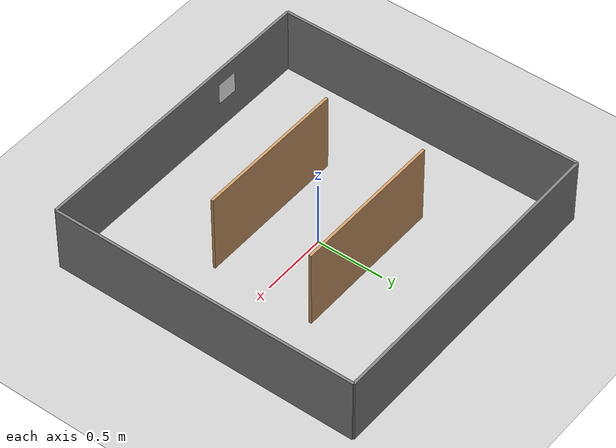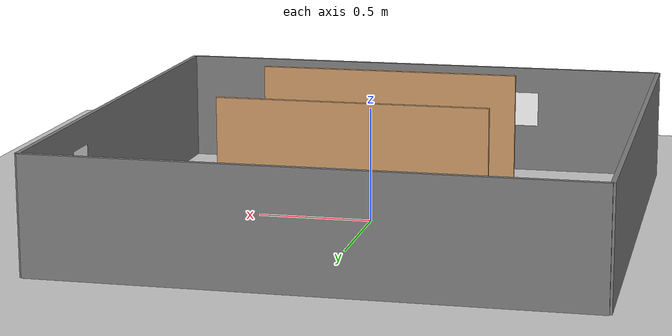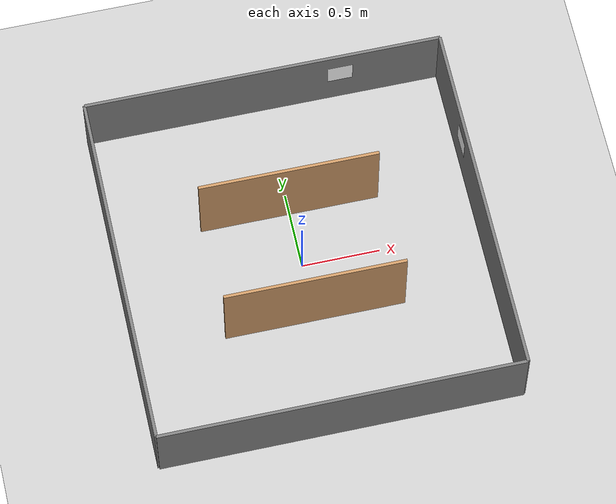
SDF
<?xml version="1.0"?>
<sdf version="1.6">
  <world name="warehouse_shelves">
    <!-- Physics Engine -->
    <plugin
      filename="gz-sim-physics-system"
      name="gz::sim::systems::Physics">
    </plugin>
    <plugin
      filename="gz-sim-user-commands-system"
      name="gz::sim::systems::UserCommands">
    </plugin>
    <plugin
      filename="gz-sim-scene-broadcaster-system"
      name="gz::sim::systems::SceneBroadcaster">
    </plugin>
    <plugin
      filename="gz-sim-sensors-system"
      name="gz::sim::systems::Sensors">
      <render_engine>ogre2</render_engine>
    </plugin>
    <plugin
      filename="gz-sim-imu-system"
      name="gz::sim::systems::Imu">
    </plugin>

    <!-- Ground Plane -->
    <include>
      <uri>https://fuel.gazebosim.org/1.0/OpenRobotics/models/Ground Plane</uri>
    </include>

    <!-- Sun (Lighting) -->
    <include>
      <uri>https://fuel.gazebosim.org/1.0/OpenRobotics/models/Sun</uri>
    </include>

    <!-- Scene Settings -->
    <scene>
      <shadows>true</shadows>
      <ambient>0.8 0.8 0.8 1</ambient>
      <background>0.7 0.7 0.7 1</background>
    </scene>

    <!-- GUI Camera View -->
    <gui fullscreen='0'>
      <camera name='user_camera'>
        <pose frame=''>0.0 -3.0 3.5 0 0.6 1.57</pose>
        <view_controller>orbit</view_controller>
        <projection_type>perspective</projection_type>
      </camera>
    </gui>

    <!-- Physics Configuration -->
    <physics type="ode">
      <real_time_update_rate>1000.0</real_time_update_rate>
      <max_step_size>0.001</max_step_size>
      <real_time_factor>1</real_time_factor>
      <ode>
        <solver>
          <type>quick</type>
          <iters>150</iters>
          <precon_iters>0</precon_iters>
          <sor>1.400000</sor>
          <use_dynamic_moi_rescaling>1</use_dynamic_moi_rescaling>
        </solver>
        <constraints>
          <cfm>0.00001</cfm>
          <erp>0.2</erp>
          <contact_max_correcting_vel>2000.000000</contact_max_correcting_vel>
          <contact_surface_layer>0.01000</contact_surface_layer>
        </constraints>
      </ode>
    </physics>

    <!-- WAREHOUSE BOUNDARY WALLS -->
    <!-- Outer perimeter: 2.3m x 2.3m centered at origin -->
    <!-- Wall thickness: 0.02m (2cm) for thin walls -->

    <!-- North Wall (top) -->
    <model name="wall_north">
      <static>true</static>
      <pose>0 1.15 0.25 0 0 0</pose>
      <link name="link">
        <collision name="collision">
          <geometry>
            <box>
              <size>2.3 0.02 0.5</size>
            </box>
          </geometry>
        </collision>
        <visual name="visual">
          <geometry>
            <box>
              <size>2.3 0.02 0.5</size>
            </box>
          </geometry>
          <material>
            <ambient>0.5 0.5 0.5 1</ambient>
            <diffuse>0.5 0.5 0.5 1</diffuse>
          </material>
        </visual>
      </link>
    </model>

    <!-- South Wall (bottom) -->
    <model name="wall_south">
      <static>true</static>
      <pose>0 -1.15 0.25 0 0 0</pose>
      <link name="link">
        <collision name="collision">
          <geometry>
            <box>
              <size>2.3 0.02 0.5</size>
            </box>
          </geometry>
        </collision>
        <visual name="visual">
          <geometry>
            <box>
              <size>2.3 0.02 0.5</size>
            </box>
          </geometry>
          <material>
            <ambient>0.5 0.5 0.5 1</ambient>
            <diffuse>0.5 0.5 0.5 1</diffuse>
          </material>
        </visual>
      </link>
    </model>

    <!-- East Wall (right) -->
    <model name="wall_east">
      <static>true</static>
      <pose>1.15 0 0.25 0 0 0</pose>
      <link name="link">
        <collision name="collision">
          <geometry>
            <box>
              <size>0.02 2.3 0.5</size>
            </box>
          </geometry>
        </collision>
        <visual name="visual">
          <geometry>
            <box>
              <size>0.02 2.3 0.5</size>
            </box>
          </geometry>
          <material>
            <ambient>0.5 0.5 0.5 1</ambient>
            <diffuse>0.5 0.5 0.5 1</diffuse>
          </material>
        </visual>
      </link>
    </model>

    <!-- West Wall (left) -->
    <model name="wall_west">
      <static>true</static>
      <pose>-1.15 0 0.25 0 0 0</pose>
      <link name="link">
        <collision name="collision">
          <geometry>
            <box>
              <size>0.02 2.3 0.5</size>
            </box>
          </geometry>
        </collision>
        <visual name="visual">
          <geometry>
            <box>
              <size>0.02 2.3 0.5</size>
            </box>
          </geometry>
          <material>
            <ambient>0.5 0.5 0.5 1</ambient>
            <diffuse>0.5 0.5 0.5 1</diffuse>
          </material>
        </visual>
      </link>
    </model>

    <!-- WAREHOUSE SHELVING UNITS -->
    <!-- 3 horizontal shelves, 1.15m wide, centered, with MORE spacing for navigation -->
    <!-- Shelf thickness: 0.02m (2cm) - same as walls -->
    <!-- Spacing increased to ~0.7m between shelves for easier navigation -->

    <!-- Shelf 1 (Top shelf) - Y position: 0.7m -->
    <model name="shelf_1">
      <static>true</static>
      <pose>0 0.38 0.3 0 0 0</pose>
      <link name="link">
        <collision name="collision">
          <geometry>
            <box>
              <size>1.15 0.02 0.6</size>
            </box>
          </geometry>
        </collision>
        <visual name="visual">
          <geometry>
            <box>
              <size>1.15 0.02 0.6</size>
            </box>
          </geometry>
          <material>
            <ambient>0.8 0.6 0.4 1</ambient>
            <diffuse>0.8 0.6 0.4 1</diffuse>
          </material>
        </visual>
      </link>
    </model>

    <!-- Shelf 3 (Bottom shelf) - Y position: -0.7m -->
    <model name="shelf_3">
      <static>true</static>
      <pose>0 -0.38 0.3 0 0 0</pose>
      <link name="link">
        <collision name="collision">
          <geometry>
            <box>
              <size>1.15 0.02 0.6</size>
            </box>
          </geometry>
        </collision>
        <visual name="visual">
          <geometry>
            <box>
              <size>1.15 0.02 0.6</size>
            </box>
          </geometry>
          <material>
            <ambient>0.8 0.6 0.4 1</ambient>
            <diffuse>0.8 0.6 0.4 1</diffuse>
          </material>
        </visual>
      </link>
    </model>

    <!-- APRILTAG MARKERS FOR DAMAGE DETECTION -->
    <!-- AprilTag ID 0 on North Wall (facing south, flat against wall) -->
    <include>
      <uri>model://apriltag_36h11_id0</uri>
      <name>apriltag_0_north</name>
      <pose>0.5 1.14 0.3 1.5708 0 3.14159</pose>
    </include>

    <!-- AprilTag ID 0 on East Wall (facing west, flat against wall) -->
    <include>
      <uri>model://apriltag_36h11_id0</uri>
      <name>apriltag_0_east</name>
      <pose>1.14 0.5 0.3 1.5708 0 -1.5708</pose>
    </include>

    <!-- AprilTag ID 0 on South Wall (facing north, flat against wall) -->
    <include>
      <uri>model://apriltag_36h11_id0</uri>
      <name>apriltag_0_south</name>
      <pose>-0.5 -1.14 0.3 1.5708 0 0</pose>
    </include>

  </world>
</sdf>

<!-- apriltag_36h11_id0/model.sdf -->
<sdf version="1.6">
  <model name="apriltag_36h11_id0">
    <static>true</static>
    <link name="link">
      <pose>0 0 0 0 0 0</pose>

      <!-- Visual element with AprilTag texture -->
      <visual name="visual">
        <geometry>
          <box>
            <size>0.162 0.162 0.001</size>
          </box>
        </geometry>
        <material>
          <ambient>1 1 1 1</ambient>
          <diffuse>1 1 1 1</diffuse>
          <specular>0 0 0 1</specular>
          <emissive>0 0 0 1</emissive>
          <pbr>
            <metal>
              <albedo_map>model://apriltag_36h11_id0/materials/textures/apriltag_0.png</albedo_map>
            </metal>
          </pbr>
        </material>
      </visual>

      <!-- Collision (very thin) -->
      <collision name="collision">
        <geometry>
          <box>
            <size>0.162 0.162 0.001</size>
          </box>
        </geometry>
      </collision>
    </link>
  </model>
</sdf>
